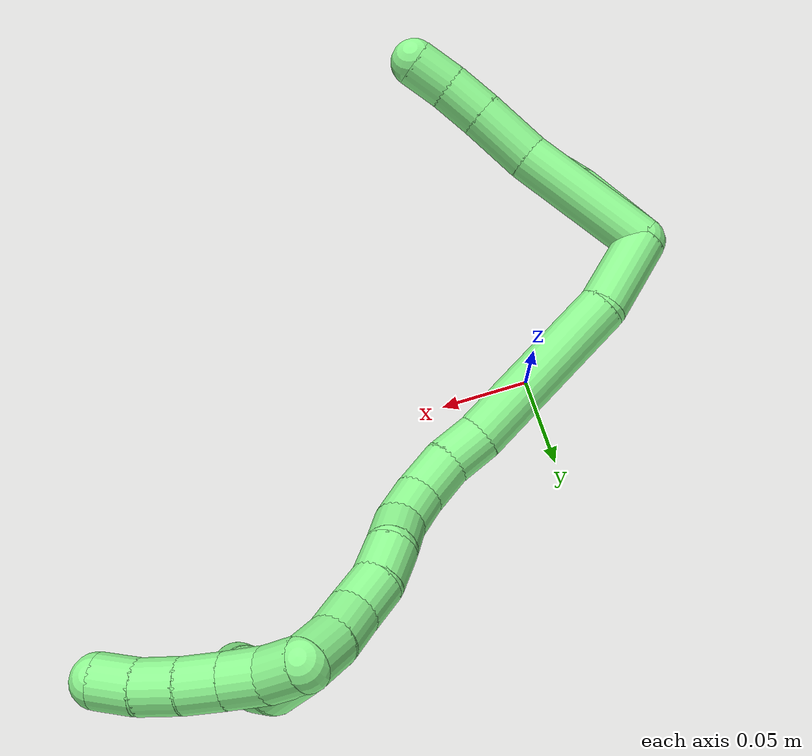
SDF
<sdf version="1.7">
 <world name="default">
  <model name="13">
   <static>0</static>
   <link name="13">
    <collision name="collision-cylinder-e_1_2_8">
     <pose>-0.002954 -0.034719 0.010659 1.27293 -0.081147 -0.059988</pose>
     <geometry><cylinder><radius>0.0125</radius><length>0.072876</length></cylinder></geometry>
     <surface>
      <friction><ode><mu>1.16</mu><mu2>1.16</mu2><slip1>0</slip1><slip2>0</slip2></ode></friction>
      <contact><ode><kp>1e+06</kp><kd>1</kd><max_vel>0</max_vel><min_depth>0.001</min_depth></ode></contact>
     </surface>
    </collision>
    <visual name="visual-cylinder-e_1_2_8">
     <pose>-0.002954 -0.034719 0.010659 1.27293 -0.081147 -0.059988</pose>
     <geometry><cylinder><radius>0.0125</radius><length>0.072876</length></cylinder></geometry>
     <material><ambient>0.564706 0.984314 0.572549 1</ambient></material>
    </visual>
    <collision name="collision-cylinder-e_2_8_9">
     <pose>-0.007936 -0.084274 0.0282 1.13639 -0.123395 -0.078838</pose>
     <geometry><cylinder><radius>0.0125</radius><length>0.032961</length></cylinder></geometry>
     <surface>
      <friction><ode><mu>1.16</mu><mu2>1.16</mu2><slip1>0</slip1><slip2>0</slip2></ode></friction>
      <contact><ode><kp>1e+06</kp><kd>1</kd><max_vel>0</max_vel><min_depth>0.001</min_depth></ode></contact>
     </surface>
    </collision>
    <visual name="visual-cylinder-e_2_8_9">
     <pose>-0.007936 -0.084274 0.0282 1.13639 -0.123395 -0.078838</pose>
     <geometry><cylinder><radius>0.0125</radius><length>0.032961</length></cylinder></geometry>
     <material><ambient>0.564706 0.984314 0.572549 1</ambient></material>
    </visual>
    <collision name="collision-cylinder-e_3_9_10">
     <pose>-0.010813 -0.109189 0.039925 1.12302 -0.075783 -0.047685</pose>
     <geometry><cylinder><radius>0.0125</radius><length>0.022427</length></cylinder></geometry>
     <surface>
      <friction><ode><mu>1.16</mu><mu2>1.16</mu2><slip1>0</slip1><slip2>0</slip2></ode></friction>
      <contact><ode><kp>1e+06</kp><kd>1</kd><max_vel>0</max_vel><min_depth>0.001</min_depth></ode></contact>
     </surface>
    </collision>
    <visual name="visual-cylinder-e_3_9_10">
     <pose>-0.010813 -0.109189 0.039925 1.12302 -0.075783 -0.047685</pose>
     <geometry><cylinder><radius>0.0125</radius><length>0.022427</length></cylinder></geometry>
     <material><ambient>0.564706 0.984314 0.572549 1</ambient></material>
    </visual>
    <collision name="collision-cylinder-e_4_10_6">
     <pose>-0.011243 -0.128731 0.050095 1.05791 0.038571 0.022547</pose>
     <geometry><cylinder><radius>0.0125</radius><length>0.021736</length></cylinder></geometry>
     <surface>
      <friction><ode><mu>1.16</mu><mu2>1.16</mu2><slip1>0</slip1><slip2>0</slip2></ode></friction>
      <contact><ode><kp>1e+06</kp><kd>1</kd><max_vel>0</max_vel><min_depth>0.001</min_depth></ode></contact>
     </surface>
    </collision>
    <visual name="visual-cylinder-e_4_10_6">
     <pose>-0.011243 -0.128731 0.050095 1.05791 0.038571 0.022547</pose>
     <geometry><cylinder><radius>0.0125</radius><length>0.021736</length></cylinder></geometry>
     <material><ambient>0.564706 0.984314 0.572549 1</ambient></material>
    </visual>
    <collision name="collision-cylinder-e_1_2_11">
     <pose>-0.010725 -0.025413 -0.009108 1.91493 -0.378161 -0.530907</pose>
     <geometry><cylinder><radius>0.0125</radius><length>0.058097</length></cylinder></geometry>
     <surface>
      <friction><ode><mu>1.16</mu><mu2>1.16</mu2><slip1>0</slip1><slip2>0</slip2></ode></friction>
      <contact><ode><kp>1e+06</kp><kd>1</kd><max_vel>0</max_vel><min_depth>0.001</min_depth></ode></contact>
     </surface>
    </collision>
    <visual name="visual-cylinder-e_1_2_11">
     <pose>-0.010725 -0.025413 -0.009108 1.91493 -0.378161 -0.530907</pose>
     <geometry><cylinder><radius>0.0125</radius><length>0.058097</length></cylinder></geometry>
     <material><ambient>0.564706 0.984314 0.572549 1</ambient></material>
    </visual>
    <collision name="collision-cylinder-e_2_11_12">
     <pose>-0.025446 -0.058658 -0.024113 2.21624 -0.387039 -0.74874</pose>
     <geometry><cylinder><radius>0.0125</radius><length>0.021172</length></cylinder></geometry>
     <surface>
      <friction><ode><mu>1.16</mu><mu2>1.16</mu2><slip1>0</slip1><slip2>0</slip2></ode></friction>
      <contact><ode><kp>1e+06</kp><kd>1</kd><max_vel>0</max_vel><min_depth>0.001</min_depth></ode></contact>
     </surface>
    </collision>
    <visual name="visual-cylinder-e_2_11_12">
     <pose>-0.025446 -0.058658 -0.024113 2.21624 -0.387039 -0.74874</pose>
     <geometry><cylinder><radius>0.0125</radius><length>0.021172</length></cylinder></geometry>
     <material><ambient>0.564706 0.984314 0.572549 1</ambient></material>
    </visual>
    <collision name="collision-cylinder-e_3_12_5">
     <pose>-0.033352 -0.073992 -0.035997 2.24425 -0.38682 -0.77277</pose>
     <geometry><cylinder><radius>0.0125</radius><length>0.020731</length></cylinder></geometry>
     <surface>
      <friction><ode><mu>1.16</mu><mu2>1.16</mu2><slip1>0</slip1><slip2>0</slip2></ode></friction>
      <contact><ode><kp>1e+06</kp><kd>1</kd><max_vel>0</max_vel><min_depth>0.001</min_depth></ode></contact>
     </surface>
    </collision>
    <visual name="visual-cylinder-e_3_12_5">
     <pose>-0.033352 -0.073992 -0.035997 2.24425 -0.38682 -0.77277</pose>
     <geometry><cylinder><radius>0.0125</radius><length>0.020731</length></cylinder></geometry>
     <material><ambient>0.564706 0.984314 0.572549 1</ambient></material>
    </visual>
    <collision name="collision-cylinder-e_1_2_13">
     <pose>0.021527 0.00143 0.000828 -1.04594 1.49417 -0.980871</pose>
     <geometry><cylinder><radius>0.0125</radius><length>0.043181</length></cylinder></geometry>
     <surface>
      <friction><ode><mu>1.16</mu><mu2>1.16</mu2><slip1>0</slip1><slip2>0</slip2></ode></friction>
      <contact><ode><kp>1e+06</kp><kd>1</kd><max_vel>0</max_vel><min_depth>0.001</min_depth></ode></contact>
     </surface>
    </collision>
    <visual name="visual-cylinder-e_1_2_13">
     <pose>0.021527 0.00143 0.000828 -1.04594 1.49417 -0.980871</pose>
     <geometry><cylinder><radius>0.0125</radius><length>0.043181</length></cylinder></geometry>
     <material><ambient>0.564706 0.984314 0.572549 1</ambient></material>
    </visual>
    <collision name="collision-cylinder-e_2_13_14">
     <pose>0.087715 -0.005722 -0.000266 1.79118 1.37635 1.5973</pose>
     <geometry><cylinder><radius>0.0125</radius><length>0.091036</length></cylinder></geometry>
     <surface>
      <friction><ode><mu>1.16</mu><mu2>1.16</mu2><slip1>0</slip1><slip2>0</slip2></ode></friction>
      <contact><ode><kp>1e+06</kp><kd>1</kd><max_vel>0</max_vel><min_depth>0.001</min_depth></ode></contact>
     </surface>
    </collision>
    <visual name="visual-cylinder-e_2_13_14">
     <pose>0.087715 -0.005722 -0.000266 1.79118 1.37635 1.5973</pose>
     <geometry><cylinder><radius>0.0125</radius><length>0.091036</length></cylinder></geometry>
     <material><ambient>0.564706 0.984314 0.572549 1</ambient></material>
    </visual>
    <collision name="collision-cylinder-e_3_14_15">
     <pose>0.142748 -0.016898 -0.000457 0.981935 1.27877 0.756775</pose>
     <geometry><cylinder><radius>0.0125</radius><length>0.021662</length></cylinder></geometry>
     <surface>
      <friction><ode><mu>1.16</mu><mu2>1.16</mu2><slip1>0</slip1><slip2>0</slip2></ode></friction>
      <contact><ode><kp>1e+06</kp><kd>1</kd><max_vel>0</max_vel><min_depth>0.001</min_depth></ode></contact>
     </surface>
    </collision>
    <visual name="visual-cylinder-e_3_14_15">
     <pose>0.142748 -0.016898 -0.000457 0.981935 1.27877 0.756775</pose>
     <geometry><cylinder><radius>0.0125</radius><length>0.021662</length></cylinder></geometry>
     <material><ambient>0.564706 0.984314 0.572549 1</ambient></material>
    </visual>
    <collision name="collision-cylinder-e_4_15_16">
     <pose>0.164213 -0.019657 0.003943 0.062424 1.33427 0.049171</pose>
     <geometry><cylinder><radius>0.0125</radius><length>0.022822</length></cylinder></geometry>
     <surface>
      <friction><ode><mu>1.16</mu><mu2>1.16</mu2><slip1>0</slip1><slip2>0</slip2></ode></friction>
      <contact><ode><kp>1e+06</kp><kd>1</kd><max_vel>0</max_vel><min_depth>0.001</min_depth></ode></contact>
     </surface>
    </collision>
    <visual name="visual-cylinder-e_4_15_16">
     <pose>0.164213 -0.019657 0.003943 0.062424 1.33427 0.049171</pose>
     <geometry><cylinder><radius>0.0125</radius><length>0.022822</length></cylinder></geometry>
     <material><ambient>0.564706 0.984314 0.572549 1</ambient></material>
    </visual>
    <collision name="collision-cylinder-e_5_16_17">
     <pose>0.184406 -0.018132 0.011428 -0.338007 1.05959 -0.199197</pose>
     <geometry><cylinder><radius>0.0125</radius><length>0.020867</length></cylinder></geometry>
     <surface>
      <friction><ode><mu>1.16</mu><mu2>1.16</mu2><slip1>0</slip1><slip2>0</slip2></ode></friction>
      <contact><ode><kp>1e+06</kp><kd>1</kd><max_vel>0</max_vel><min_depth>0.001</min_depth></ode></contact>
     </surface>
    </collision>
    <visual name="visual-cylinder-e_5_16_17">
     <pose>0.184406 -0.018132 0.011428 -0.338007 1.05959 -0.199197</pose>
     <geometry><cylinder><radius>0.0125</radius><length>0.020867</length></cylinder></geometry>
     <material><ambient>0.564706 0.984314 0.572549 1</ambient></material>
    </visual>
    <collision name="collision-cylinder-e_6_17_18">
     <pose>0.200302 -0.012563 0.022619 -0.546181 0.738822 -0.216048</pose>
     <geometry><cylinder><radius>0.0125</radius><length>0.020185</length></cylinder></geometry>
     <surface>
      <friction><ode><mu>1.16</mu><mu2>1.16</mu2><slip1>0</slip1><slip2>0</slip2></ode></friction>
      <contact><ode><kp>1e+06</kp><kd>1</kd><max_vel>0</max_vel><min_depth>0.001</min_depth></ode></contact>
     </surface>
    </collision>
    <visual name="visual-cylinder-e_6_17_18">
     <pose>0.200302 -0.012563 0.022619 -0.546181 0.738822 -0.216048</pose>
     <geometry><cylinder><radius>0.0125</radius><length>0.020185</length></cylinder></geometry>
     <material><ambient>0.564706 0.984314 0.572549 1</ambient></material>
    </visual>
    <collision name="collision-cylinder-e_7_18_19">
     <pose>0.215865 -0.005575 0.032953 -0.666467 1.04932 -0.395437</pose>
     <geometry><cylinder><radius>0.0125</radius><length>0.02022</length></cylinder></geometry>
     <surface>
      <friction><ode><mu>1.16</mu><mu2>1.16</mu2><slip1>0</slip1><slip2>0</slip2></ode></friction>
      <contact><ode><kp>1e+06</kp><kd>1</kd><max_vel>0</max_vel><min_depth>0.001</min_depth></ode></contact>
     </surface>
    </collision>
    <visual name="visual-cylinder-e_7_18_19">
     <pose>0.215865 -0.005575 0.032953 -0.666467 1.04932 -0.395437</pose>
     <geometry><cylinder><radius>0.0125</radius><length>0.02022</length></cylinder></geometry>
     <material><ambient>0.564706 0.984314 0.572549 1</ambient></material>
    </visual>
    <collision name="collision-cylinder-e_8_19_20">
     <pose>0.233672 -0.00172 0.041127 -0.173952 1.12862 -0.110274</pose>
     <geometry><cylinder><radius>0.0125</radius><length>0.020006</length></cylinder></geometry>
     <surface>
      <friction><ode><mu>1.16</mu><mu2>1.16</mu2><slip1>0</slip1><slip2>0</slip2></ode></friction>
      <contact><ode><kp>1e+06</kp><kd>1</kd><max_vel>0</max_vel><min_depth>0.001</min_depth></ode></contact>
     </surface>
    </collision>
    <visual name="visual-cylinder-e_8_19_20">
     <pose>0.233672 -0.00172 0.041127 -0.173952 1.12862 -0.110274</pose>
     <geometry><cylinder><radius>0.0125</radius><length>0.020006</length></cylinder></geometry>
     <material><ambient>0.564706 0.984314 0.572549 1</ambient></material>
    </visual>
    <collision name="collision-cylinder-e_9_20_21">
     <pose>0.250552 0.000693 0.051327 -0.272448 0.900553 -0.132327</pose>
     <geometry><cylinder><radius>0.0125</radius><length>0.020007</length></cylinder></geometry>
     <surface>
      <friction><ode><mu>1.16</mu><mu2>1.16</mu2><slip1>0</slip1><slip2>0</slip2></ode></friction>
      <contact><ode><kp>1e+06</kp><kd>1</kd><max_vel>0</max_vel><min_depth>0.001</min_depth></ode></contact>
     </surface>
    </collision>
    <visual name="visual-cylinder-e_9_20_21">
     <pose>0.250552 0.000693 0.051327 -0.272448 0.900553 -0.132327</pose>
     <geometry><cylinder><radius>0.0125</radius><length>0.020007</length></cylinder></geometry>
     <material><ambient>0.564706 0.984314 0.572549 1</ambient></material>
    </visual>
    <collision name="collision-cylinder-e_10_21_1">
     <pose>0.265729 0.002682 0.064109 -0.046602 0.823146 -0.020345</pose>
     <geometry><cylinder><radius>0.0125</radius><length>0.020015</length></cylinder></geometry>
     <surface>
      <friction><ode><mu>1.16</mu><mu2>1.16</mu2><slip1>0</slip1><slip2>0</slip2></ode></friction>
      <contact><ode><kp>1e+06</kp><kd>1</kd><max_vel>0</max_vel><min_depth>0.001</min_depth></ode></contact>
     </surface>
    </collision>
    <visual name="visual-cylinder-e_10_21_1">
     <pose>0.265729 0.002682 0.064109 -0.046602 0.823146 -0.020345</pose>
     <geometry><cylinder><radius>0.0125</radius><length>0.020015</length></cylinder></geometry>
     <material><ambient>0.564706 0.984314 0.572549 1</ambient></material>
    </visual>
    <collision name="collision-cylinder-e_1_1_22">
     <pose>0.278774 -0.003822 0.066332 2.16151 0.607263 1.06214</pose>
     <geometry><cylinder><radius>0.0125</radius><length>0.02</length></cylinder></geometry>
     <surface>
      <friction><ode><mu>1.16</mu><mu2>1.16</mu2><slip1>0</slip1><slip2>0</slip2></ode></friction>
      <contact><ode><kp>1e+06</kp><kd>1</kd><max_vel>0</max_vel><min_depth>0.001</min_depth></ode></contact>
     </surface>
    </collision>
    <visual name="visual-cylinder-e_1_1_22">
     <pose>0.278774 -0.003822 0.066332 2.16151 0.607263 1.06214</pose>
     <geometry><cylinder><radius>0.0125</radius><length>0.02</length></cylinder></geometry>
     <material><ambient>0.564706 0.984314 0.572549 1</ambient></material>
    </visual>
    <collision name="collision-cylinder-e_2_22_23">
     <pose>0.290311 -0.018484 0.059635 1.83523 0.622538 0.795987</pose>
     <geometry><cylinder><radius>0.0125</radius><length>0.02</length></cylinder></geometry>
     <surface>
      <friction><ode><mu>1.16</mu><mu2>1.16</mu2><slip1>0</slip1><slip2>0</slip2></ode></friction>
      <contact><ode><kp>1e+06</kp><kd>1</kd><max_vel>0</max_vel><min_depth>0.001</min_depth></ode></contact>
     </surface>
    </collision>
    <visual name="visual-cylinder-e_2_22_23">
     <pose>0.290311 -0.018484 0.059635 1.83523 0.622538 0.795987</pose>
     <geometry><cylinder><radius>0.0125</radius><length>0.02</length></cylinder></geometry>
     <material><ambient>0.564706 0.984314 0.572549 1</ambient></material>
    </visual>
    <collision name="collision-cylinder-e_3_23_24">
     <pose>0.302235 -0.034232 0.056907 1.64705 0.655214 0.703138</pose>
     <geometry><cylinder><radius>0.0125</radius><length>0.02</length></cylinder></geometry>
     <surface>
      <friction><ode><mu>1.16</mu><mu2>1.16</mu2><slip1>0</slip1><slip2>0</slip2></ode></friction>
      <contact><ode><kp>1e+06</kp><kd>1</kd><max_vel>0</max_vel><min_depth>0.001</min_depth></ode></contact>
     </surface>
    </collision>
    <visual name="visual-cylinder-e_3_23_24">
     <pose>0.302235 -0.034232 0.056907 1.64705 0.655214 0.703138</pose>
     <geometry><cylinder><radius>0.0125</radius><length>0.02</length></cylinder></geometry>
     <material><ambient>0.564706 0.984314 0.572549 1</ambient></material>
    </visual>
    <collision name="collision-cylinder-e_4_24_25">
     <pose>0.313732 -0.050517 0.055534 1.66236 0.570836 0.622319</pose>
     <geometry><cylinder><radius>0.0125</radius><length>0.02</length></cylinder></geometry>
     <surface>
      <friction><ode><mu>1.16</mu><mu2>1.16</mu2><slip1>0</slip1><slip2>0</slip2></ode></friction>
      <contact><ode><kp>1e+06</kp><kd>1</kd><max_vel>0</max_vel><min_depth>0.001</min_depth></ode></contact>
     </surface>
    </collision>
    <visual name="visual-cylinder-e_4_24_25">
     <pose>0.313732 -0.050517 0.055534 1.66236 0.570836 0.622319</pose>
     <geometry><cylinder><radius>0.0125</radius><length>0.02</length></cylinder></geometry>
     <material><ambient>0.564706 0.984314 0.572549 1</ambient></material>
    </visual>
    <collision name="collision-cylinder-e_5_25_4">
     <pose>0.323165 -0.068038 0.054336 1.61759 0.414808 0.43408</pose>
     <geometry><cylinder><radius>0.0125</radius><length>0.02</length></cylinder></geometry>
     <surface>
      <friction><ode><mu>1.16</mu><mu2>1.16</mu2><slip1>0</slip1><slip2>0</slip2></ode></friction>
      <contact><ode><kp>1e+06</kp><kd>1</kd><max_vel>0</max_vel><min_depth>0.001</min_depth></ode></contact>
     </surface>
    </collision>
    <visual name="visual-cylinder-e_5_25_4">
     <pose>0.323165 -0.068038 0.054336 1.61759 0.414808 0.43408</pose>
     <geometry><cylinder><radius>0.0125</radius><length>0.02</length></cylinder></geometry>
     <material><ambient>0.564706 0.984314 0.572549 1</ambient></material>
    </visual>
    <collision name="collision-cylinder-e_1_1_26">
     <pose>0.279754 -0.005244 0.055695 2.645 0.368829 1.26863</pose>
     <geometry><cylinder><radius>0.0125</radius><length>0.037095</length></cylinder></geometry>
     <surface>
      <friction><ode><mu>1.16</mu><mu2>1.16</mu2><slip1>0</slip1><slip2>0</slip2></ode></friction>
      <contact><ode><kp>1e+06</kp><kd>1</kd><max_vel>0</max_vel><min_depth>0.001</min_depth></ode></contact>
     </surface>
    </collision>
    <visual name="visual-cylinder-e_1_1_26">
     <pose>0.279754 -0.005244 0.055695 2.645 0.368829 1.26863</pose>
     <geometry><cylinder><radius>0.0125</radius><length>0.037095</length></cylinder></geometry>
     <material><ambient>0.564706 0.984314 0.572549 1</ambient></material>
    </visual>
    <collision name="collision-cylinder-e_2_26_27">
     <pose>0.288027 -0.020303 0.032179 2.45436 0.146512 0.40459</pose>
     <geometry><cylinder><radius>0.0125</radius><length>0.021722</length></cylinder></geometry>
     <surface>
      <friction><ode><mu>1.16</mu><mu2>1.16</mu2><slip1>0</slip1><slip2>0</slip2></ode></friction>
      <contact><ode><kp>1e+06</kp><kd>1</kd><max_vel>0</max_vel><min_depth>0.001</min_depth></ode></contact>
     </surface>
    </collision>
    <visual name="visual-cylinder-e_2_26_27">
     <pose>0.288027 -0.020303 0.032179 2.45436 0.146512 0.40459</pose>
     <geometry><cylinder><radius>0.0125</radius><length>0.021722</length></cylinder></geometry>
     <material><ambient>0.564706 0.984314 0.572549 1</ambient></material>
    </visual>
    <collision name="collision-cylinder-e_3_27_28">
     <pose>0.288907 -0.034177 0.016008 2.41029 -0.066628 -0.17365</pose>
     <geometry><cylinder><radius>0.0125</radius><length>0.021181</length></cylinder></geometry>
     <surface>
      <friction><ode><mu>1.16</mu><mu2>1.16</mu2><slip1>0</slip1><slip2>0</slip2></ode></friction>
      <contact><ode><kp>1e+06</kp><kd>1</kd><max_vel>0</max_vel><min_depth>0.001</min_depth></ode></contact>
     </surface>
    </collision>
    <visual name="visual-cylinder-e_3_27_28">
     <pose>0.288907 -0.034177 0.016008 2.41029 -0.066628 -0.17365</pose>
     <geometry><cylinder><radius>0.0125</radius><length>0.021181</length></cylinder></geometry>
     <material><ambient>0.564706 0.984314 0.572549 1</ambient></material>
    </visual>
    <collision name="collision-cylinder-e_4_28_3">
     <pose>0.288338 -0.046605 -0.000292 2.57459 0.013583 0.046614</pose>
     <geometry><cylinder><radius>0.0125</radius><length>0.020001</length></cylinder></geometry>
     <surface>
      <friction><ode><mu>1.16</mu><mu2>1.16</mu2><slip1>0</slip1><slip2>0</slip2></ode></friction>
      <contact><ode><kp>1e+06</kp><kd>1</kd><max_vel>0</max_vel><min_depth>0.001</min_depth></ode></contact>
     </surface>
    </collision>
    <visual name="visual-cylinder-e_4_28_3">
     <pose>0.288338 -0.046605 -0.000292 2.57459 0.013583 0.046614</pose>
     <geometry><cylinder><radius>0.0125</radius><length>0.020001</length></cylinder></geometry>
     <material><ambient>0.564706 0.984314 0.572549 1</ambient></material>
    </visual>
    <collision name="collision-sphere-3">
     <pose>0.288474 -0.051975 -0.008727 0 -0 0</pose>
     <geometry><sphere><radius>0.0125</radius></sphere></geometry>
     <surface>
      <friction><ode><mu>1.16</mu><mu2>1.16</mu2><slip1>0</slip1><slip2>0</slip2></ode></friction>
      <contact><ode><kp>1e+06</kp><kd>1</kd><max_vel>0</max_vel><min_depth>0.001</min_depth></ode></contact>
     </surface>
    </collision>
    <visual name="visual-sphere-3">
     <pose>0.288474 -0.051975 -0.008727 0 -0 0</pose>
     <geometry><sphere><radius>0.0125</radius></sphere></geometry>
     <material><ambient>0.564706 0.984314 0.572549 1</ambient></material>
    </visual>
    <collision name="collision-sphere-28">
     <pose>0.288202 -0.041234 0.008142 0 -0 0</pose>
     <geometry><sphere><radius>0.0125</radius></sphere></geometry>
     <surface>
      <friction><ode><mu>1.16</mu><mu2>1.16</mu2><slip1>0</slip1><slip2>0</slip2></ode></friction>
      <contact><ode><kp>1e+06</kp><kd>1</kd><max_vel>0</max_vel><min_depth>0.001</min_depth></ode></contact>
     </surface>
    </collision>
    <visual name="visual-sphere-28">
     <pose>0.288202 -0.041234 0.008142 0 -0 0</pose>
     <geometry><sphere><radius>0.0125</radius></sphere></geometry>
     <material><ambient>0.564706 0.984314 0.572549 1</ambient></material>
    </visual>
    <collision name="collision-sphere-27">
     <pose>0.289613 -0.027119 0.023873 0 -0 0</pose>
     <geometry><sphere><radius>0.0125</radius></sphere></geometry>
     <surface>
      <friction><ode><mu>1.16</mu><mu2>1.16</mu2><slip1>0</slip1><slip2>0</slip2></ode></friction>
      <contact><ode><kp>1e+06</kp><kd>1</kd><max_vel>0</max_vel><min_depth>0.001</min_depth></ode></contact>
     </surface>
    </collision>
    <visual name="visual-sphere-27">
     <pose>0.289613 -0.027119 0.023873 0 -0 0</pose>
     <geometry><sphere><radius>0.0125</radius></sphere></geometry>
     <material><ambient>0.564706 0.984314 0.572549 1</ambient></material>
    </visual>
    <collision name="collision-sphere-26">
     <pose>0.286441 -0.013486 0.040484 0 -0 0</pose>
     <geometry><sphere><radius>0.0125</radius></sphere></geometry>
     <surface>
      <friction><ode><mu>1.16</mu><mu2>1.16</mu2><slip1>0</slip1><slip2>0</slip2></ode></friction>
      <contact><ode><kp>1e+06</kp><kd>1</kd><max_vel>0</max_vel><min_depth>0.001</min_depth></ode></contact>
     </surface>
    </collision>
    <visual name="visual-sphere-26">
     <pose>0.286441 -0.013486 0.040484 0 -0 0</pose>
     <geometry><sphere><radius>0.0125</radius></sphere></geometry>
     <material><ambient>0.564706 0.984314 0.572549 1</ambient></material>
    </visual>
    <collision name="collision-sphere-4">
     <pose>0.327196 -0.07718 0.053908 0 -0 0</pose>
     <geometry><sphere><radius>0.0125</radius></sphere></geometry>
     <surface>
      <friction><ode><mu>1.16</mu><mu2>1.16</mu2><slip1>0</slip1><slip2>0</slip2></ode></friction>
      <contact><ode><kp>1e+06</kp><kd>1</kd><max_vel>0</max_vel><min_depth>0.001</min_depth></ode></contact>
     </surface>
    </collision>
    <visual name="visual-sphere-4">
     <pose>0.327196 -0.07718 0.053908 0 -0 0</pose>
     <geometry><sphere><radius>0.0125</radius></sphere></geometry>
     <material><ambient>0.564706 0.984314 0.572549 1</ambient></material>
    </visual>
    <collision name="collision-sphere-25">
     <pose>0.319135 -0.058896 0.054765 0 -0 0</pose>
     <geometry><sphere><radius>0.0125</radius></sphere></geometry>
     <surface>
      <friction><ode><mu>1.16</mu><mu2>1.16</mu2><slip1>0</slip1><slip2>0</slip2></ode></friction>
      <contact><ode><kp>1e+06</kp><kd>1</kd><max_vel>0</max_vel><min_depth>0.001</min_depth></ode></contact>
     </surface>
    </collision>
    <visual name="visual-sphere-25">
     <pose>0.319135 -0.058896 0.054765 0 -0 0</pose>
     <geometry><sphere><radius>0.0125</radius></sphere></geometry>
     <material><ambient>0.564706 0.984314 0.572549 1</ambient></material>
    </visual>
    <collision name="collision-sphere-24">
     <pose>0.308329 -0.042138 0.056303 0 -0 0</pose>
     <geometry><sphere><radius>0.0125</radius></sphere></geometry>
     <surface>
      <friction><ode><mu>1.16</mu><mu2>1.16</mu2><slip1>0</slip1><slip2>0</slip2></ode></friction>
      <contact><ode><kp>1e+06</kp><kd>1</kd><max_vel>0</max_vel><min_depth>0.001</min_depth></ode></contact>
     </surface>
    </collision>
    <visual name="visual-sphere-24">
     <pose>0.308329 -0.042138 0.056303 0 -0 0</pose>
     <geometry><sphere><radius>0.0125</radius></sphere></geometry>
     <material><ambient>0.564706 0.984314 0.572549 1</ambient></material>
    </visual>
    <collision name="collision-sphere-23">
     <pose>0.296142 -0.026326 0.057511 0 -0 0</pose>
     <geometry><sphere><radius>0.0125</radius></sphere></geometry>
     <surface>
      <friction><ode><mu>1.16</mu><mu2>1.16</mu2><slip1>0</slip1><slip2>0</slip2></ode></friction>
      <contact><ode><kp>1e+06</kp><kd>1</kd><max_vel>0</max_vel><min_depth>0.001</min_depth></ode></contact>
     </surface>
    </collision>
    <visual name="visual-sphere-23">
     <pose>0.296142 -0.026326 0.057511 0 -0 0</pose>
     <geometry><sphere><radius>0.0125</radius></sphere></geometry>
     <material><ambient>0.564706 0.984314 0.572549 1</ambient></material>
    </visual>
    <collision name="collision-sphere-22">
     <pose>0.28448 -0.010642 0.061758 0 -0 0</pose>
     <geometry><sphere><radius>0.0125</radius></sphere></geometry>
     <surface>
      <friction><ode><mu>1.16</mu><mu2>1.16</mu2><slip1>0</slip1><slip2>0</slip2></ode></friction>
      <contact><ode><kp>1e+06</kp><kd>1</kd><max_vel>0</max_vel><min_depth>0.001</min_depth></ode></contact>
     </surface>
    </collision>
    <visual name="visual-sphere-22">
     <pose>0.28448 -0.010642 0.061758 0 -0 0</pose>
     <geometry><sphere><radius>0.0125</radius></sphere></geometry>
     <material><ambient>0.564706 0.984314 0.572549 1</ambient></material>
    </visual>
    <collision name="collision-sphere-1">
     <pose>0.273068 0.002999 0.070906 0 -0 0</pose>
     <geometry><sphere><radius>0.0125</radius></sphere></geometry>
     <surface>
      <friction><ode><mu>1.16</mu><mu2>1.16</mu2><slip1>0</slip1><slip2>0</slip2></ode></friction>
      <contact><ode><kp>1e+06</kp><kd>1</kd><max_vel>0</max_vel><min_depth>0.001</min_depth></ode></contact>
     </surface>
    </collision>
    <visual name="visual-sphere-1">
     <pose>0.273068 0.002999 0.070906 0 -0 0</pose>
     <geometry><sphere><radius>0.0125</radius></sphere></geometry>
     <material><ambient>0.564706 0.984314 0.572549 1</ambient></material>
    </visual>
    <collision name="collision-sphere-21">
     <pose>0.258391 0.002365 0.057312 0 -0 0</pose>
     <geometry><sphere><radius>0.0125</radius></sphere></geometry>
     <surface>
      <friction><ode><mu>1.16</mu><mu2>1.16</mu2><slip1>0</slip1><slip2>0</slip2></ode></friction>
      <contact><ode><kp>1e+06</kp><kd>1</kd><max_vel>0</max_vel><min_depth>0.001</min_depth></ode></contact>
     </surface>
    </collision>
    <visual name="visual-sphere-21">
     <pose>0.258391 0.002365 0.057312 0 -0 0</pose>
     <geometry><sphere><radius>0.0125</radius></sphere></geometry>
     <material><ambient>0.564706 0.984314 0.572549 1</ambient></material>
    </visual>
    <collision name="collision-sphere-11">
     <pose>-0.02145 -0.050827 -0.018216 0 -0 0</pose>
     <geometry><sphere><radius>0.0125</radius></sphere></geometry>
     <surface>
      <friction><ode><mu>1.16</mu><mu2>1.16</mu2><slip1>0</slip1><slip2>0</slip2></ode></friction>
      <contact><ode><kp>1e+06</kp><kd>1</kd><max_vel>0</max_vel><min_depth>0.001</min_depth></ode></contact>
     </surface>
    </collision>
    <visual name="visual-sphere-11">
     <pose>-0.02145 -0.050827 -0.018216 0 -0 0</pose>
     <geometry><sphere><radius>0.0125</radius></sphere></geometry>
     <material><ambient>0.564706 0.984314 0.572549 1</ambient></material>
    </visual>
    <collision name="collision-sphere-6">
     <pose>-0.010824 -0.138193 0.055424 0 -0 0</pose>
     <geometry><sphere><radius>0.0125</radius></sphere></geometry>
     <surface>
      <friction><ode><mu>1.16</mu><mu2>1.16</mu2><slip1>0</slip1><slip2>0</slip2></ode></friction>
      <contact><ode><kp>1e+06</kp><kd>1</kd><max_vel>0</max_vel><min_depth>0.001</min_depth></ode></contact>
     </surface>
    </collision>
    <visual name="visual-sphere-6">
     <pose>-0.010824 -0.138193 0.055424 0 -0 0</pose>
     <geometry><sphere><radius>0.0125</radius></sphere></geometry>
     <material><ambient>0.564706 0.984314 0.572549 1</ambient></material>
    </visual>
    <collision name="collision-sphere-10">
     <pose>-0.011662 -0.119268 0.044766 0 -0 0</pose>
     <geometry><sphere><radius>0.0125</radius></sphere></geometry>
     <surface>
      <friction><ode><mu>1.16</mu><mu2>1.16</mu2><slip1>0</slip1><slip2>0</slip2></ode></friction>
      <contact><ode><kp>1e+06</kp><kd>1</kd><max_vel>0</max_vel><min_depth>0.001</min_depth></ode></contact>
     </surface>
    </collision>
    <visual name="visual-sphere-10">
     <pose>-0.011662 -0.119268 0.044766 0 -0 0</pose>
     <geometry><sphere><radius>0.0125</radius></sphere></geometry>
     <material><ambient>0.564706 0.984314 0.572549 1</ambient></material>
    </visual>
    <collision name="collision-sphere-9">
     <pose>-0.009964 -0.09911 0.035084 0 -0 0</pose>
     <geometry><sphere><radius>0.0125</radius></sphere></geometry>
     <surface>
      <friction><ode><mu>1.16</mu><mu2>1.16</mu2><slip1>0</slip1><slip2>0</slip2></ode></friction>
      <contact><ode><kp>1e+06</kp><kd>1</kd><max_vel>0</max_vel><min_depth>0.001</min_depth></ode></contact>
     </surface>
    </collision>
    <visual name="visual-sphere-9">
     <pose>-0.009964 -0.09911 0.035084 0 -0 0</pose>
     <geometry><sphere><radius>0.0125</radius></sphere></geometry>
     <material><ambient>0.564706 0.984314 0.572549 1</ambient></material>
    </visual>
    <collision name="collision-sphere-2">
     <geometry><sphere><radius>0.0125</radius></sphere></geometry>
     <surface>
      <friction><ode><mu>1.16</mu><mu2>1.16</mu2><slip1>0</slip1><slip2>0</slip2></ode></friction>
      <contact><ode><kp>1e+06</kp><kd>1</kd><max_vel>0</max_vel><min_depth>0.001</min_depth></ode></contact>
     </surface>
    </collision>
    <visual name="visual-sphere-2">
     <geometry><sphere><radius>0.0125</radius></sphere></geometry>
     <material><ambient>0.564706 0.984314 0.572549 1</ambient></material>
    </visual>
    <collision name="collision-sphere-19">
     <pose>0.224631 -0.002461 0.036911 0 -0 0</pose>
     <geometry><sphere><radius>0.0125</radius></sphere></geometry>
     <surface>
      <friction><ode><mu>1.16</mu><mu2>1.16</mu2><slip1>0</slip1><slip2>0</slip2></ode></friction>
      <contact><ode><kp>1e+06</kp><kd>1</kd><max_vel>0</max_vel><min_depth>0.001</min_depth></ode></contact>
     </surface>
    </collision>
    <visual name="visual-sphere-19">
     <pose>0.224631 -0.002461 0.036911 0 -0 0</pose>
     <geometry><sphere><radius>0.0125</radius></sphere></geometry>
     <material><ambient>0.564706 0.984314 0.572549 1</ambient></material>
    </visual>
    <collision name="collision-sphere-8">
     <pose>-0.005907 -0.069438 0.021317 0 -0 0</pose>
     <geometry><sphere><radius>0.0125</radius></sphere></geometry>
     <surface>
      <friction><ode><mu>1.16</mu><mu2>1.16</mu2><slip1>0</slip1><slip2>0</slip2></ode></friction>
      <contact><ode><kp>1e+06</kp><kd>1</kd><max_vel>0</max_vel><min_depth>0.001</min_depth></ode></contact>
     </surface>
    </collision>
    <visual name="visual-sphere-8">
     <pose>-0.005907 -0.069438 0.021317 0 -0 0</pose>
     <geometry><sphere><radius>0.0125</radius></sphere></geometry>
     <material><ambient>0.564706 0.984314 0.572549 1</ambient></material>
    </visual>
    <collision name="collision-sphere-12">
     <pose>-0.029442 -0.066489 -0.03001 0 -0 0</pose>
     <geometry><sphere><radius>0.0125</radius></sphere></geometry>
     <surface>
      <friction><ode><mu>1.16</mu><mu2>1.16</mu2><slip1>0</slip1><slip2>0</slip2></ode></friction>
      <contact><ode><kp>1e+06</kp><kd>1</kd><max_vel>0</max_vel><min_depth>0.001</min_depth></ode></contact>
     </surface>
    </collision>
    <visual name="visual-sphere-12">
     <pose>-0.029442 -0.066489 -0.03001 0 -0 0</pose>
     <geometry><sphere><radius>0.0125</radius></sphere></geometry>
     <material><ambient>0.564706 0.984314 0.572549 1</ambient></material>
    </visual>
    <collision name="collision-sphere-5">
     <pose>-0.037262 -0.081496 -0.041984 0 -0 0</pose>
     <geometry><sphere><radius>0.0125</radius></sphere></geometry>
     <surface>
      <friction><ode><mu>1.16</mu><mu2>1.16</mu2><slip1>0</slip1><slip2>0</slip2></ode></friction>
      <contact><ode><kp>1e+06</kp><kd>1</kd><max_vel>0</max_vel><min_depth>0.001</min_depth></ode></contact>
     </surface>
    </collision>
    <visual name="visual-sphere-5">
     <pose>-0.037262 -0.081496 -0.041984 0 -0 0</pose>
     <geometry><sphere><radius>0.0125</radius></sphere></geometry>
     <material><ambient>0.564706 0.984314 0.572549 1</ambient></material>
    </visual>
    <collision name="collision-sphere-13">
     <pose>0.043055 0.002861 0.001656 0 -0 0</pose>
     <geometry><sphere><radius>0.0125</radius></sphere></geometry>
     <surface>
      <friction><ode><mu>1.16</mu><mu2>1.16</mu2><slip1>0</slip1><slip2>0</slip2></ode></friction>
      <contact><ode><kp>1e+06</kp><kd>1</kd><max_vel>0</max_vel><min_depth>0.001</min_depth></ode></contact>
     </surface>
    </collision>
    <visual name="visual-sphere-13">
     <pose>0.043055 0.002861 0.001656 0 -0 0</pose>
     <geometry><sphere><radius>0.0125</radius></sphere></geometry>
     <material><ambient>0.564706 0.984314 0.572549 1</ambient></material>
    </visual>
    <collision name="collision-sphere-14">
     <pose>0.132375 -0.014304 -0.002189 0 -0 0</pose>
     <geometry><sphere><radius>0.0125</radius></sphere></geometry>
     <surface>
      <friction><ode><mu>1.16</mu><mu2>1.16</mu2><slip1>0</slip1><slip2>0</slip2></ode></friction>
      <contact><ode><kp>1e+06</kp><kd>1</kd><max_vel>0</max_vel><min_depth>0.001</min_depth></ode></contact>
     </surface>
    </collision>
    <visual name="visual-sphere-14">
     <pose>0.132375 -0.014304 -0.002189 0 -0 0</pose>
     <geometry><sphere><radius>0.0125</radius></sphere></geometry>
     <material><ambient>0.564706 0.984314 0.572549 1</ambient></material>
    </visual>
    <collision name="collision-sphere-15">
     <pose>0.15312 -0.019491 0.001275 0 -0 0</pose>
     <geometry><sphere><radius>0.0125</radius></sphere></geometry>
     <surface>
      <friction><ode><mu>1.16</mu><mu2>1.16</mu2><slip1>0</slip1><slip2>0</slip2></ode></friction>
      <contact><ode><kp>1e+06</kp><kd>1</kd><max_vel>0</max_vel><min_depth>0.001</min_depth></ode></contact>
     </surface>
    </collision>
    <visual name="visual-sphere-15">
     <pose>0.15312 -0.019491 0.001275 0 -0 0</pose>
     <geometry><sphere><radius>0.0125</radius></sphere></geometry>
     <material><ambient>0.564706 0.984314 0.572549 1</ambient></material>
    </visual>
    <collision name="collision-sphere-16">
     <pose>0.175306 -0.019824 0.006612 0 -0 0</pose>
     <geometry><sphere><radius>0.0125</radius></sphere></geometry>
     <surface>
      <friction><ode><mu>1.16</mu><mu2>1.16</mu2><slip1>0</slip1><slip2>0</slip2></ode></friction>
      <contact><ode><kp>1e+06</kp><kd>1</kd><max_vel>0</max_vel><min_depth>0.001</min_depth></ode></contact>
     </surface>
    </collision>
    <visual name="visual-sphere-16">
     <pose>0.175306 -0.019824 0.006612 0 -0 0</pose>
     <geometry><sphere><radius>0.0125</radius></sphere></geometry>
     <material><ambient>0.564706 0.984314 0.572549 1</ambient></material>
    </visual>
    <collision name="collision-sphere-17">
     <pose>0.193506 -0.016439 0.016243 0 -0 0</pose>
     <geometry><sphere><radius>0.0125</radius></sphere></geometry>
     <surface>
      <friction><ode><mu>1.16</mu><mu2>1.16</mu2><slip1>0</slip1><slip2>0</slip2></ode></friction>
      <contact><ode><kp>1e+06</kp><kd>1</kd><max_vel>0</max_vel><min_depth>0.001</min_depth></ode></contact>
     </surface>
    </collision>
    <visual name="visual-sphere-17">
     <pose>0.193506 -0.016439 0.016243 0 -0 0</pose>
     <geometry><sphere><radius>0.0125</radius></sphere></geometry>
     <material><ambient>0.564706 0.984314 0.572549 1</ambient></material>
    </visual>
    <collision name="collision-sphere-18">
     <pose>0.207098 -0.008688 0.028994 0 -0 0</pose>
     <geometry><sphere><radius>0.0125</radius></sphere></geometry>
     <surface>
      <friction><ode><mu>1.16</mu><mu2>1.16</mu2><slip1>0</slip1><slip2>0</slip2></ode></friction>
      <contact><ode><kp>1e+06</kp><kd>1</kd><max_vel>0</max_vel><min_depth>0.001</min_depth></ode></contact>
     </surface>
    </collision>
    <visual name="visual-sphere-18">
     <pose>0.207098 -0.008688 0.028994 0 -0 0</pose>
     <geometry><sphere><radius>0.0125</radius></sphere></geometry>
     <material><ambient>0.564706 0.984314 0.572549 1</ambient></material>
    </visual>
    <collision name="collision-sphere-20">
     <pose>0.242712 -0.000979 0.045342 0 -0 0</pose>
     <geometry><sphere><radius>0.0125</radius></sphere></geometry>
     <surface>
      <friction><ode><mu>1.16</mu><mu2>1.16</mu2><slip1>0</slip1><slip2>0</slip2></ode></friction>
      <contact><ode><kp>1e+06</kp><kd>1</kd><max_vel>0</max_vel><min_depth>0.001</min_depth></ode></contact>
     </surface>
    </collision>
    <visual name="visual-sphere-20">
     <pose>0.242712 -0.000979 0.045342 0 -0 0</pose>
     <geometry><sphere><radius>0.0125</radius></sphere></geometry>
     <material><ambient>0.564706 0.984314 0.572549 1</ambient></material>
    </visual>
    <inertial>
     <pose>0.131846 -0.030114 0.020591 0 -0 0</pose>
     <mass>0.75</mass>
     <inertia><ixx>0.000107</ixx><ixy>0</ixy><ixz>0</ixz><iyy>7.3e-05</iyy><iyz>0</iyz><izz>1e-06</izz></inertia>
    </inertial>
   </link>
   <pose>-0.061128 -0.022913 0.103071 0.211197 0.0253 0.672962</pose>
  </model>
 </world>
</sdf>
